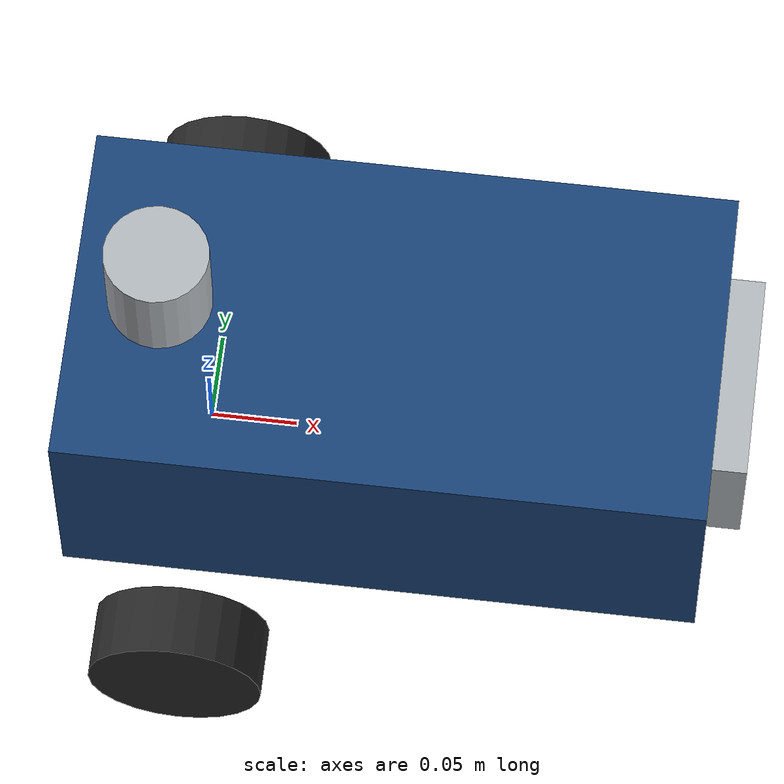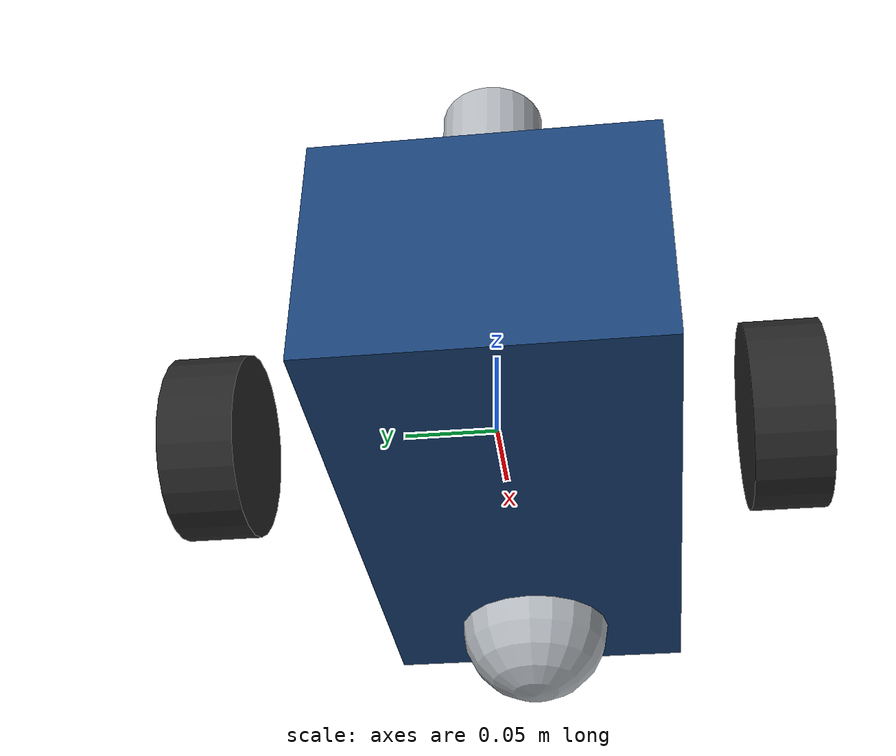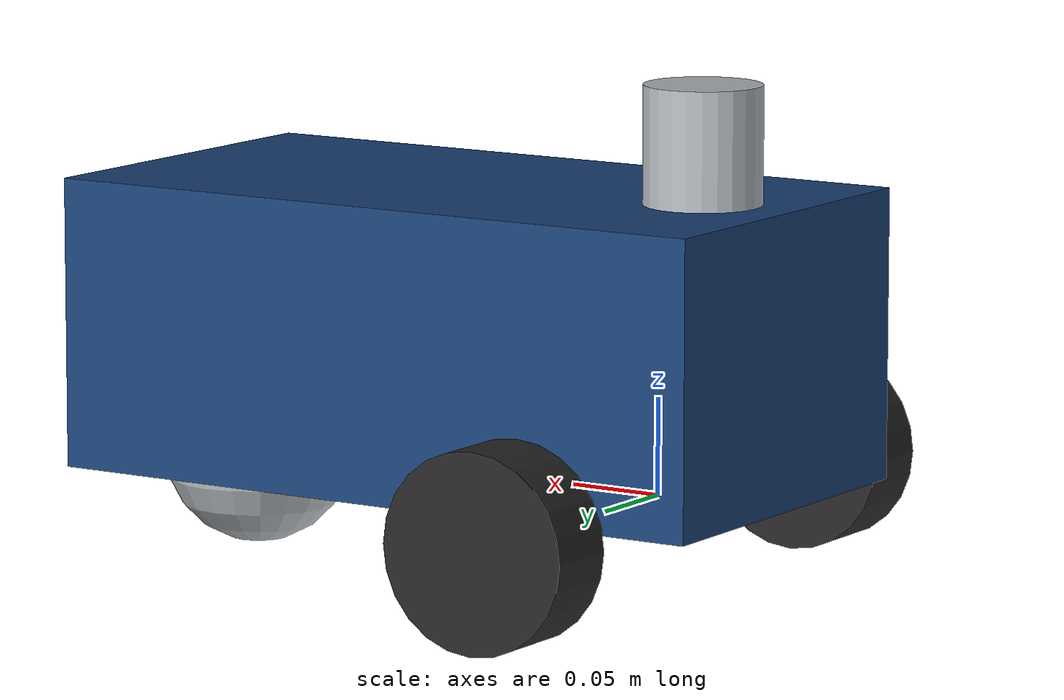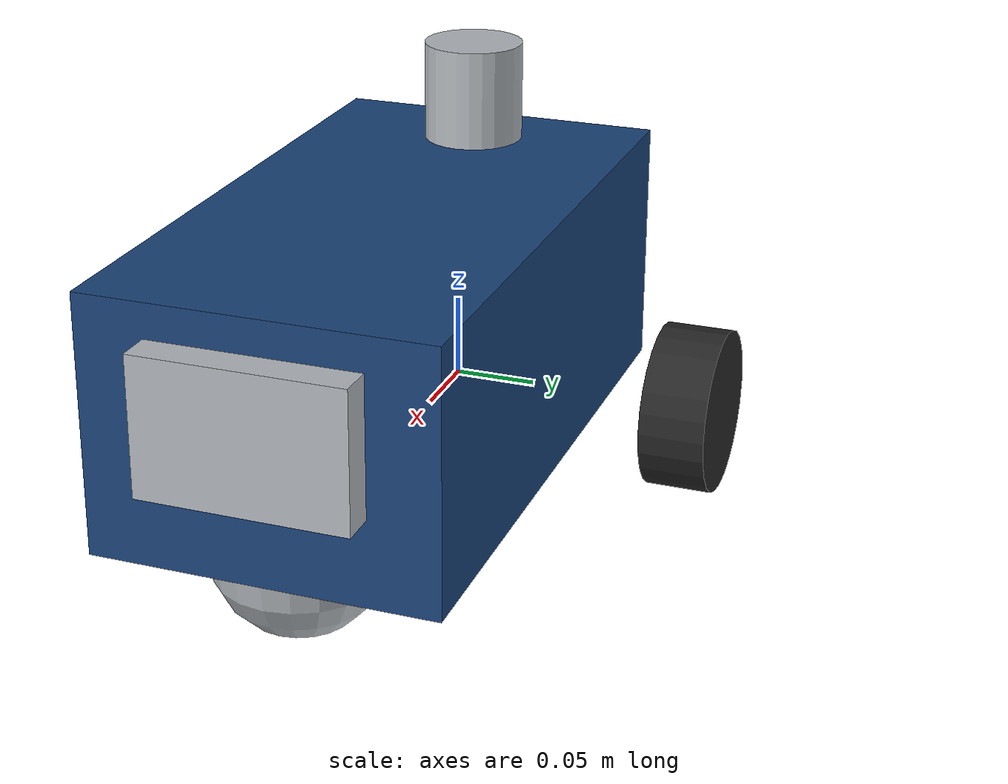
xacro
<?xml version="1.0"?>
<robot xmlns:xacro="http://www.ros.org/wiki/xacro">
  <xacro:include filename="inertial_macros.xacro"/>

    <!-- Chassis Properties (in meteres, kG) -->
  <xacro:property name="chassis_length" value="0.37"/>  <!-- measured 2026-07-19 -->
  <xacro:property name="chassis_width" value="0.20"/>  <!-- measured 2026-07-19: body width, excludes wheels -->
  <xacro:property name="chassis_height" value="0.15"/>
  <xacro:property name="chassis_mass" value="12.0"/>
  <xacro:property name="chassis_joint_x" value="-0.075"/>

     <!-- Wheel Properties (in meteres)  -->
  <xacro:property name="wheel_radius" value="0.05035"/>  <!-- measured 2026-07-19: 100.7mm diameter -->
  <xacro:property name="wheel_width" value="0.04"/>
  <xacro:property name="wheel_mass" value="0.765"/>
  <xacro:property name="wheel_separation" value="0.305"/>
  <xacro:property name="wheel_y_offset" value="${wheel_separation / 2.0}"/>
  <xacro:property name="wheel_no_load_rpm" value="200.0"/>
  <xacro:property name="wheel_rated_rpm" value="115.0"/>
  <xacro:property name="wheel_rated_torque" value="0.96"/>
  <xacro:property name="wheel_stall_torque" value="2.0"/>
  <xacro:property name="wheel_torque_constant" value="0.75"/>
  <xacro:property name="wheel_speed_constant_rpm_per_volt" value="11.1"/>
  <xacro:property name="wheel_encoder_resolution" value="4096"/>
  <xacro:property name="wheel_single_wheel_load" value="10.0"/>
  <xacro:property name="wheel_velocity_limit" value="${wheel_no_load_rpm * 2.0 * pi / 60.0}"/>
  <xacro:property name="wheel_rated_velocity" value="${wheel_rated_rpm * 2.0 * pi / 60.0}"/>
  <xacro:property name="wheel_effort_limit" value="${wheel_stall_torque}"/>
  <xacro:property name="wheel_joint_damping" value="0.05"/>
  <xacro:property name="wheel_joint_friction" value="0.02"/>

  <!-- Caster Properties (in meteres)  -->
  <xacro:property name="caster_radius" value="0.05"/>
  <xacro:property name="caster_mass" value="0.3"/>
  <xacro:property name="caster_offset" value="0.00"/>
  <xacro:property name="caster_x" value="${(chassis_length - caster_radius - caster_offset)}"/>
  <xacro:property name="caster_z" value="0"/>

  <!-- Display Properties (in meteres)  -->
  <xacro:property name="display_width" value="0.12"/>
  <xacro:property name="display_depth" value="0.02"/>
  <xacro:property name="display_height" value="0.08"/>
  <xacro:property name="display_mass" value="0.25"/>
  <xacro:property name="display_offset" value="0.05"/>
  <xacro:property name="display_x" value="${chassis_length + display_depth / 2.0}"/>
  <xacro:property name="display_y" value="0.0"/>
  <xacro:property name="display_z" value="${display_height / 2.0 + display_offset}"/>

  <!-- Arm Mount Properties (in meteres, kG) -->
  <xacro:property name="arm_mount_radius" value="0.03"/>
  <xacro:property name="arm_mount_length" value="0.06"/>
  <xacro:property name="arm_mount_mass" value="0.4"/>
  <xacro:property name="arm_mount_offset" value="0.05"/>
  <xacro:property name="arm_mount_x" value="${arm_mount_offset}"/>
  <xacro:property name="arm_mount_y" value="0.0"/>
  <xacro:property name="arm_mount_z" value="${chassis_height + arm_mount_length / 2.0}"/>

  <!-- Materials -->
  <material name="chassis_blue">
    <color rgba="0.10 0.26 0.47 1.0"/>
  </material>

  <material name="trim_grey">
    <color rgba="0.70 0.72 0.74 1.0"/>
  </material>

  <material name="wheel_black">
    <color rgba="0.15 0.15 0.15 1.0"/>
  </material>

  <!-- BASE LINK -->
  <link name="base_link"/>

  <!-- CHASSIS LINK -->
  <joint name="chassis_joint" type="fixed">
    <parent link="base_link"/>
    <child link="chassis"/>
    <origin xyz="${chassis_joint_x} 0 0" rpy="0 0 0"/>
  </joint>

  <link name="chassis">
    <visual>
      <origin xyz="${chassis_length / 2.0} 0 ${chassis_height / 2.0}" rpy="0 0 0"/>
      <geometry>
        <box size="${chassis_length} ${chassis_width} ${chassis_height}"/>
      </geometry>
      <material name="chassis_blue"/>
    </visual>
    <collision>
      <origin xyz="${chassis_length / 2.0} 0 ${chassis_height / 2.0}" rpy="0 0 0"/>
      <geometry>
        <box size="${chassis_length} ${chassis_width} ${chassis_height}"/>
      </geometry>
    </collision>
    <xacro:inertial_box
      mass="${chassis_mass}"
      x="${chassis_length}"
      y="${chassis_width}"
      z="${chassis_height}"
      origin_xyz="${chassis_length / 2.0} 0 ${chassis_height / 2.0}"
      origin_rpy="0 0 0"/>
  </link>

  <!-- LEFT WHEEL JOINT -->
  <joint name="left_wheel_joint" type="continuous">
    <parent link="base_link"/>
    <child link="left_wheel"/>
    <origin xyz="0 ${wheel_y_offset} 0" rpy="${-pi / 2.0} 0 0"/>
    <axis xyz="0 0 1"/>
    <limit effort="${wheel_effort_limit}" velocity="${wheel_velocity_limit}"/>
    <dynamics damping="${wheel_joint_damping}" friction="${wheel_joint_friction}"/>
  </joint>

  <link name="left_wheel">
    <visual>
      <geometry>
        <cylinder radius="${wheel_radius}" length="${wheel_width}"/>
      </geometry>
      <material name="wheel_black"/>
    </visual>
    <collision>
      <geometry>
        <cylinder radius="${wheel_radius}" length="${wheel_width}"/>
      </geometry>
    </collision>
    <xacro:inertial_cylinder
      mass="${wheel_mass}"
      radius="${wheel_radius}"
      length="${wheel_width}"
      origin_xyz="0 0 0"
      origin_rpy="0 0 0"/>
  </link>

  <!-- RIGHT WHEEL JOINT -->
  <joint name="right_wheel_joint" type="continuous">
    <parent link="base_link"/>
    <child link="right_wheel"/>
    <origin xyz="0 ${-wheel_y_offset} 0" rpy="${pi / 2.0} 0 0"/>
    <axis xyz="0 0 -1"/>
    <limit effort="${wheel_effort_limit}" velocity="${wheel_velocity_limit}"/>
    <dynamics damping="${wheel_joint_damping}" friction="${wheel_joint_friction}"/>
  </joint>

  <link name="right_wheel">
    <visual>
      <geometry>
        <cylinder radius="${wheel_radius}" length="${wheel_width}"/>
      </geometry>
      <material name="wheel_black"/>
    </visual>
    <collision>
      <geometry>
        <cylinder radius="${wheel_radius}" length="${wheel_width}"/>
      </geometry>
    </collision>
    <xacro:inertial_cylinder
      mass="${wheel_mass}"
      radius="${wheel_radius}"
      length="${wheel_width}"
      origin_xyz="0 0 0"
      origin_rpy="0 0 0"/>
  </link>

  <!-- CASTER WHEEL JOINT -->
  <joint name="caster_wheel_joint" type="fixed">
    <parent link="chassis"/>
    <child link="caster_wheel"/>
    <origin xyz="${caster_x} 0 ${caster_z}" rpy="0 0 0"/>
  </joint>

  <link name="caster_wheel">
    <visual>
      <geometry>
        <sphere radius="${caster_radius}"/>
      </geometry>
      <material name="trim_grey"/>
    </visual>
    <collision>
      <geometry>
        <sphere radius="${caster_radius}"/>
      </geometry>
    </collision>
    <xacro:inertial_sphere
      mass="${caster_mass}"
      radius="${caster_radius}"
      origin_xyz="0 0 0"
      origin_rpy="0 0 0"/>
  </link>

  <!-- DISPLAY JOINT -->
  <joint name="display_joint" type="fixed">
    <parent link="chassis"/>
    <child link="display_link"/>
    <origin xyz="${display_x} ${display_y} ${display_z}" rpy="0 0 0"/>
  </joint>

  <link name="display_link">
    <visual>
      <geometry>
       <box size="${display_depth} ${display_width} ${display_height}"/>
    </geometry>
      <material name="trim_grey"/>
    </visual>
  </link>

  <!-- ARM MOUNT JOINT -->
  <joint name="arm_mount_joint" type="fixed">
    <parent link="chassis"/>
    <child link="arm_mount_link"/>
    <origin xyz="${arm_mount_x} ${arm_mount_y} ${arm_mount_z}" rpy="0 0 0"/>
  </joint>

  <link name="arm_mount_link">
    <visual>
      <geometry>
        <cylinder radius="${arm_mount_radius}" length="${arm_mount_length}"/>
      </geometry>
      <material name="trim_grey"/>
    </visual>
    <collision>
      <geometry>
        <cylinder radius="${arm_mount_radius}" length="${arm_mount_length}"/>
      </geometry>
    </collision>
    <xacro:inertial_cylinder
      mass="${arm_mount_mass}"
      radius="${arm_mount_radius}"
      length="${arm_mount_length}"
      origin_xyz="0 0 0"
      origin_rpy="0 0 0"/>
  </link>
</robot>

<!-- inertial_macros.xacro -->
<robot xmlns:xacro="http://www.ros.org/wiki/xacro">
  <xacro:macro name="inertial_box" params="mass x y z origin_xyz origin_rpy">
    <inertial>
      <origin xyz="${origin_xyz}" rpy="${origin_rpy}"/>
      <mass value="${mass}"/>
      <inertia
        ixx="${(mass / 12.0) * (y * y + z * z)}"
        ixy="0.0"
        ixz="0.0"
        iyy="${(mass / 12.0) * (x * x + z * z)}"
        iyz="0.0"
        izz="${(mass / 12.0) * (x * x + y * y)}"/>
    </inertial>
  </xacro:macro>

  <xacro:macro name="inertial_cylinder" params="mass radius length origin_xyz origin_rpy">
    <inertial>
      <origin xyz="${origin_xyz}" rpy="${origin_rpy}"/>
      <mass value="${mass}"/>
      <inertia
        ixx="${(mass / 12.0) * (3.0 * radius * radius + length * length)}"
        ixy="0.0"
        ixz="0.0"
        iyy="${(mass / 12.0) * (3.0 * radius * radius + length * length)}"
        iyz="0.0"
        izz="${0.5 * mass * radius * radius}"/>
    </inertial>
  </xacro:macro>

  <xacro:macro name="inertial_sphere" params="mass radius origin_xyz origin_rpy">
    <inertial>
      <origin xyz="${origin_xyz}" rpy="${origin_rpy}"/>
      <mass value="${mass}"/>
      <xacro:property name="sphere_inertia" value="${0.4 * mass * radius * radius}"/>
      <inertia
        ixx="${sphere_inertia}"
        ixy="0.0"
        ixz="0.0"
        iyy="${sphere_inertia}"
        iyz="0.0"
        izz="${sphere_inertia}"/>
    </inertial>
  </xacro:macro>
</robot>
